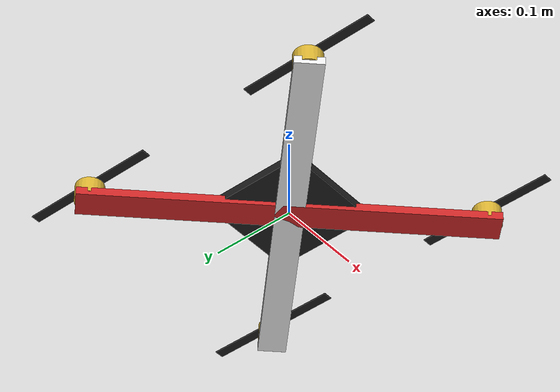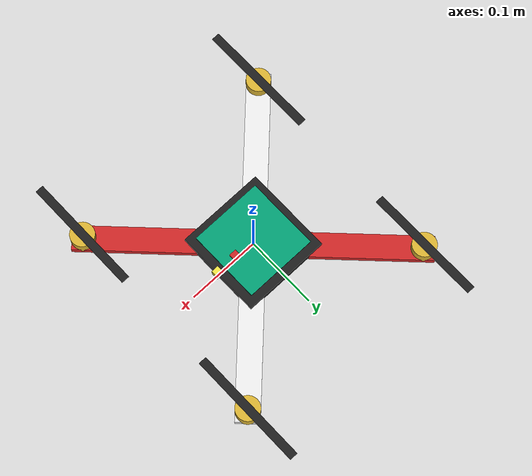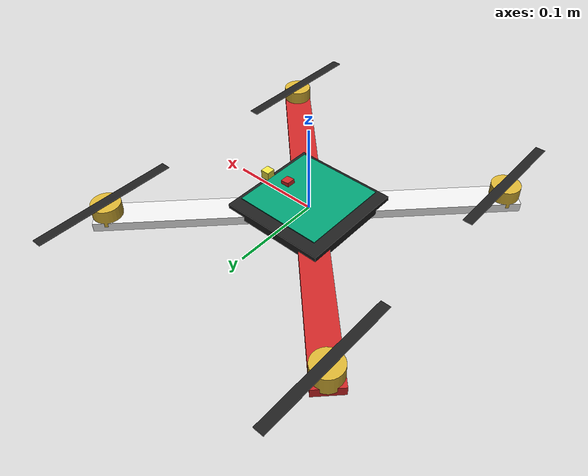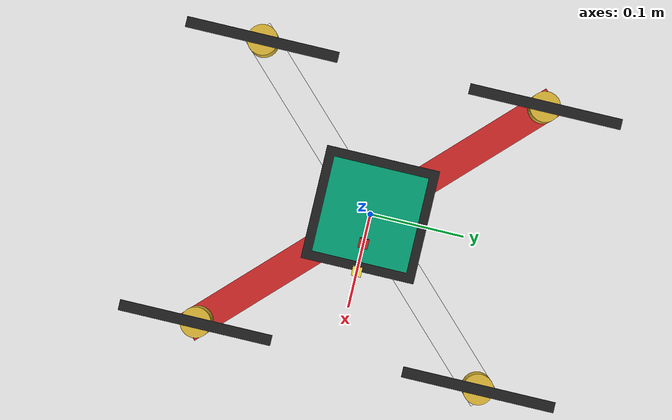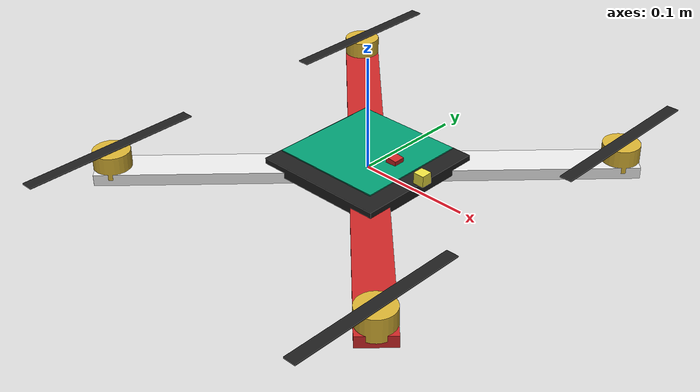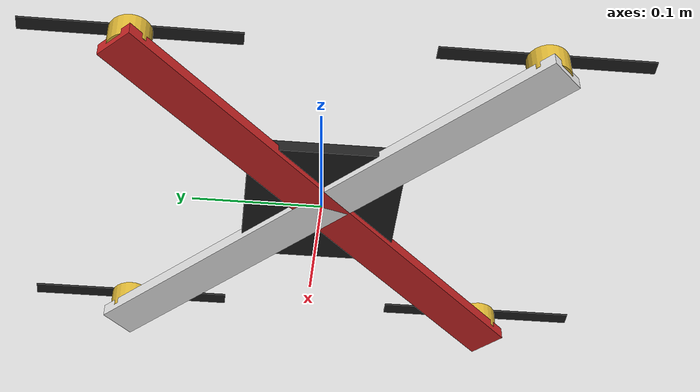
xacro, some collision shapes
<?xml version="1.0"?>
<robot xmlns:xacro="http://www.ros.org/wiki/xacro" name="Kwad">
	<xacro:property name="width" value="0.0315" />
	<xacro:property name="length" value="0.45" />
	<xacro:property name="height" value="0.01" />
	<xacro:property name="mass_fr" value="0.5" />
	<xacro:property name="mass_pr" value="0.0055" />
	<xacro:property name="pi_value" value="3.14159263" />
	<xacro:property name="radiusp" value="0.20" />
	<xacro:property name="prop_loc" value="0.15909" />
	<xacro:include filename="$(find urc_gazebo)/urdf/material.xacro" />
	<xacro:include filename="$(find urc_gazebo)/urdf/drone.gazebo" />
	<xacro:include filename="$(find urc_gazebo)/urdf/drone_inertials.xacro" />
	<!-- Define inertial macro -->
	<xacro:macro name="default_inertial" params="mass p ix_value iy_value iz_value" >
		<inertial>
			<origin xyz="0 0 0" rpy="0 0 ${p}" />
			<mass value="${mass}" />
			<inertia ixx="${ix_value}" ixy="0" ixz="0"
					 iyy="${iy_value}" iyz="0" izz="${iz_value}" />
		</inertial>
	</xacro:macro>
	<link name="base_link1">
		<visual>
			<origin xyz="0 0 0" rpy="0 0 ${pi_value/4}" />

			<geometry>
				<box size="${width} ${length} ${height}" />
			</geometry>

			<material name="red" />
		</visual>

		<collision>
			<origin xyz="0 0 0" rpy="0 0 ${pi_value/4}" />

			<geometry>
				<box size="${width} ${length} ${height}" />
			</geometry>
		</collision>

		<xacro:default_inertial mass="${mass_fr}" p="${pi_value/4}" ix_value="${0.04989/2}" iy_value="${0.04989/2}" iz_value="${0.24057/2}" />

	</link>
	<link name="base_link2">
		<visual>
			<origin xyz="0 0 0" rpy="0 0 ${-pi_value/4}" />

			<geometry>
				<box size="${width} ${length} ${height}" />
			</geometry>

			<material name="white" />
		</visual>

		<collision>
			<origin xyz="0 0 0" rpy="0 0 ${-pi_value/4}" />

			<geometry>
				<box size="${width} ${length} ${height}" />
			</geometry>
		</collision>

		<xacro:default_inertial mass="${mass_fr}" p="${-pi_value/4}" ix_value="${0.04989/2}" iy_value="${0.04989/2}" iz_value="${0.24057/2}" />
	</link>
	<link name="plate1">
		<visual>
			<origin xyz="0 0 0" rpy="0 0 0" />

			<geometry>
				<box size="${0.12} ${0.12} ${0.01}" />
			</geometry>

			<material name="black" />
		</visual>

		<collision>
			<origin xyz="0 0 0" rpy="0 0 0" />

			<geometry>
				<box size="${0.12} ${0.12} ${0.01}" />
			</geometry>
		</collision>

		<xacro:default_inertial mass="${0.01}" p="${0}" ix_value="${0}" iy_value="${0}" iz_value="${2.4-5}" />
	</link>

	<!-- Front-Facing Camera -->

	<link name="cam/front">
          <visual>
            <geometry>
              <box size="0.01 0.01 0.01"/>
            </geometry>
          </visual>

        <collision>
          <geometry>
            <box size="0.01 0.01 0.01"/>
          </geometry>
        </collision>

        <xacro:box_inertia m="0.1" w="0.1" d="0.1" h="0.1"/>
        </link>

        <joint name="front_cam_joint" type="fixed">
	  <axis xyz="1 0 0"/>
	  <!-- Edit these parameters to change camera orientation -->
	  <origin xyz="0.06 0 0.01" rpy = "0 0 0"/>
	  <parent link="plate1"/>
	  <child link="cam/front"/>
        </joint>

	<gazebo reference="cam/front">
          <sensor name="front_sensor" type="camera">
            <plugin name="front_sensor" filename="libgazebo_ros_camera.so">
              <ros>
                <namespace>/image</namespace>
                <remapping>~/image_raw:=front_img</remapping>
                <remapping>~/camera_info:=front_info</remapping>
              </ros>
              <initial_orientation_as_reference>false</initial_orientation_as_reference>
            </plugin>
            <always_on>true</always_on>
            <update_rate>100</update_rate>
            <visualize>true</visualize>
            <camera name="cam/front">
              <distortion>
                <k1>0.1</k1>
                <k2>0.2</k2>
                <k3>0.3</k3>
                <p1>0.4</p1>
                <p2>0.5</p2>
                <center>0.5 0.5</center>
              </distortion>
             </camera>
           </sensor>
        </gazebo>

        <!-- Bottom-Facing Camera -->

        <link name="cam/bottom">
          <visual>
            <geometry>
              <box size="0.01 0.01 0.01"/>
            </geometry>
          </visual>

        <collision>
          <geometry>
            <box size="0.01 0.01 0.01"/>
          </geometry>
        </collision>

        <xacro:box_inertia m="0.1" w="0.1" d="0.1" h="0.1"/>
        </link>

        <joint name="bottom_cam_joint" type="fixed">
	  <axis xyz="1 0 0"/>
	  <!-- Edit these parameters to change camera orientation -->
	  <origin xyz="0 0 0" rpy = "0 ${pi_value/2} 0"/>
	  <parent link="plate1"/>
	  <child link="cam/bottom"/>
        </joint>

	<gazebo reference="cam/bottom">
          <sensor name="bottom_sensor" type="camera">
            <plugin name="bottom_sensor" filename="libgazebo_ros_camera.so">
              <ros>
                <namespace>/image</namespace>
                <remapping>~/image_raw:=bottom_img</remapping>
                <remapping>~/camera_info:=bottom_info</remapping>
              </ros>
              <initial_orientation_as_reference>false</initial_orientation_as_reference>
            </plugin>
            <always_on>true</always_on>
            <update_rate>100</update_rate>
            <visualize>true</visualize>
            <camera name="cam/bottom">
              <distortion>
                <k1>0.1</k1>
                <k2>0.2</k2>
                <k3>0.3</k3>
                <p1>0.4</p1>
                <p2>0.5</p2>
                <center>0.5 0.5</center>
              </distortion>
             </camera>
           </sensor>
        </gazebo>

	<link name="plate2">
		<visual>
			<origin xyz="0 0 0" rpy="0 0 0" />

			<geometry>
				<box size="${0.05} ${0.03} ${0.005}" />
			</geometry>

			<material name="blue" />
		</visual>

		<collision>
			<origin xyz="0 0 0" rpy="0 0 0" />

			<geometry>
				<box size="${0.05} ${0.03} ${0.005}" />
			</geometry>
		</collision>

		<xacro:default_inertial mass="${0.001}" p="${0}" ix_value="${0}" iy_value="${0}" iz_value="${8.1666-7}" />
	</link>
	<link name="cyl1">
		<visual>
			<origin xyz="0 0 0" rpy="0 0 0" />

			<geometry>
				<cylinder radius="0.016" length="0.02" />
			</geometry>

			<material name="golden" />
		</visual>

		<collision>
			<origin xyz="0 0 0" rpy="0 0 0" />

			<geometry>
				<cylinder radius="0.016" length="0.02" />
			</geometry>
		</collision>

		<xacro:default_inertial mass="${0.01}" p="${0}" ix_value="${8.95e-6}" iy_value="${8.95e-6}" iz_value="${2.23e-4}" />
	</link>
	<link name="cyl2">
		<visual>
			<origin xyz="0 0 0" rpy="0 0 0" />

			<geometry>
				<cylinder radius="0.016" length="0.02" />
			</geometry>

			<material name="golden" />
		</visual>

		<collision>
			<origin xyz="0 0 0" rpy="0 0 0" />

			<geometry>
				<cylinder radius="0.016" length="0.02" />
			</geometry>
		</collision>

		<xacro:default_inertial mass="${0.01}" p="${0}" ix_value="${8.95e-6}" iy_value="${8.95e-6}" iz_value="${2.23e-4}" />
	</link>
	<link name="cyl3">
		<visual>
			<origin xyz="0 0 0" rpy="0 0 0" />

			<geometry>
				<cylinder radius="0.016" length="0.02" />
			</geometry>

			<material name="golden" />
		</visual>

		<collision>
			<origin xyz="0 0 0" rpy="0 0 0" />

			<geometry>
				<cylinder radius="0.016" length="0.02" />
			</geometry>
		</collision>

		<xacro:default_inertial mass="${0.01}" p="${0}" ix_value="${8.95e-6}" iy_value="${8.95e-6}" iz_value="${2.23e-4}" />
	</link>
	<link name="cyl4">
		<visual>
			<origin xyz="0 0 0" rpy="0 0 0" />

			<geometry>
				<cylinder radius="0.016" length="0.02" />
			</geometry>

			<material name="golden" />
		</visual>

		<collision>
			<origin xyz="0 0 0" rpy="0 0 0" />

			<geometry>
				<cylinder radius="0.016" length="0.02" />
			</geometry>
		</collision>

		<xacro:default_inertial mass="${0.01}" p="${0}" ix_value="${8.95e-6}" iy_value="${8.95e-6}" iz_value="${2.23e-4}" />
	</link>
	<link name="arduino">
		<visual>
			<origin xyz="0 0 0" rpy="0 0 0" />
			<geometry>
				<mesh filename="package://fly_bot/meshes/22V10.dae" scale="0.005 0.005 0.005" />
			</geometry>
		</visual>
		<collision>
			<origin xyz="0 0 0" rpy="0 0 0" />
			<geometry>
				<box size="0.1 0.1 0.001" />
			</geometry>
		</collision>
		<xacro:default_inertial mass="${0.05}" p="${0}" ix_value="${0}" iy_value="${0}" iz_value="${8.33333e-5}" />
	</link>
	<link name="camera_link">
		<visual>
			<origin xyz="0 0 0" rpy="0 0 0" />
			<geometry>
				<box size="0.01 0.01 0.01" />
			</geometry>

			<material name="red" />

		</visual>

		<collision>
			<origin xyz="0 0 0" rpy="0 0 0" />
			<geometry>
				<box size="0.01 0.01 0.01" />
			</geometry>
		</collision>

		<xacro:default_inertial mass="${1e-5}" p="${0}" ix_value="${1e-6}" iy_value="${1e-6}" iz_value="${1e-6}" />
	</link>
	<!-- Propellers of the quad: fr, fl, br, bl -->
	<link name="prop_front_right">
		<visual>
			<origin xyz="0 0 0" rpy="0 0 0" />

			<geometry>
				<box size="${0.03302/3} ${radiusp*0.8} ${0.001}" />
			</geometry>

			<material name="black" />
		</visual>

		<collision>
			<origin xyz="0 0 0" rpy="0 0 0" />

			<geometry>
				<box size="${0.03302/3} ${radiusp*0.8} ${0.001}" />
			</geometry>
		</collision>

		<xacro:default_inertial mass="${mass_pr}" p="${0}" ix_value="${0}" iy_value="${0}" iz_value="${4.42448e-5}" />
	</link>

	<link name="prop_front_left">
		<visual>
			<origin xyz="0 0 0" rpy="0 0 0" />

			<geometry>
				<box size="${0.03302/3} ${radiusp*0.8} ${0.001}" />
			</geometry>

			<material name="black"/>
		</visual>

		<collision>
			<origin xyz="0 0 0" rpy="0 0 0" />

			<geometry>
				<box size="${0.03302/3} ${radiusp*0.8} ${0.001}" />
			</geometry>
		</collision>

		<xacro:default_inertial mass="${mass_pr}" p="${0}"  ix_value="${0}" iy_value="${0}" iz_value="${4.42448e-5}" />

	</link>

	<link name="prop_back_right">
		<visual>
			<origin xyz="0 0 0" rpy="0 0 0" />

			<geometry>
				<box size="${0.03302/3} ${radiusp*0.8} ${0.001}" />
			</geometry>

			<material name="black"/>
		</visual>

		<collision>
			<origin xyz="0 0 0" rpy="0 0 0" />

			<geometry>
				<box size="${0.03302/3} ${radiusp*0.8} ${0.001}" />
			</geometry>
		</collision>

		<xacro:default_inertial mass="${mass_pr}" p="${0}"  ix_value="${0}" iy_value="${0}" iz_value="${4.42448e-5}" />

	</link>

	<link name="prop_back_left">
		<visual>
			<origin xyz="0 0 0" rpy="0 0 0" />

			<geometry>
				<box size="${0.03302/3} ${radiusp*0.8} ${0.001}" />
			</geometry>

			<material name="black"/>
		</visual>

		<collision>
			<origin xyz="0 0 0" rpy="0 0 0" />

			<geometry>
				<box size="${0.03302/3} ${radiusp*0.8} ${0.001}" />
			</geometry>
		</collision>

		<xacro:default_inertial mass="${mass_pr}" p="${0}"  ix_value="${0}" iy_value="${0}" iz_value="${4.42448e-5}" />

	</link>
	<!-- Define the joint between the arms of the frame -->
	<joint name="center" type="fixed">
		<parent link="base_link1" />
		<child link="base_link2" />

		<origin xyz="0 0 0" rpy="0 0 0"/>
		<axis xyz="0 0 1" />
	</joint>
	<!-- Define joint between prop fr and frame -->
	<joint name="joint_front_right_prop" type="continuous">
		<parent link="base_link2" />
		<child link="prop_front_right" />
		<origin xyz="${prop_loc - 0.01} ${prop_loc - 0.01} 0.021" rpy="0 0 0"/>
		<axis xyz="0 0 1" />
	</joint>
	<!-- Define joint between prop fl and frame -->
	<joint name="joint_front_left_prop" type="continuous">
		<parent link="base_link1" />
		<child link="prop_front_left" />
		<origin xyz="${-prop_loc + 0.01} ${prop_loc - 0.01} 0.021" rpy="0 0 0" />
		<axis xyz="0 0 1" />
	</joint>
<!-- Define joint between prop br and frame -->
	<joint name="joint_back_right_prop" type="continuous">
		<parent link="base_link1" />
		<child link="prop_back_right" />
		<origin xyz="${prop_loc - 0.01} ${-prop_loc + 0.01} 0.021" rpy="0 0 0" />
		<axis xyz="0 0 1" />
	</joint>
<!-- Define joint between prop br and frame -->
	<joint name="joint_back_left_prop" type="continuous">
		<parent link="base_link2" />
		<child link="prop_back_left" />
		<origin xyz="${-prop_loc + 0.01} ${-prop_loc + 0.01} 0.021" rpy="0 0 0" />
		<axis xyz="0 0 1" />
	</joint>
<!-- Define joint between plate1 and frame -->
	<joint name="joint_plate1_frame" type="fixed">
		<parent link="base_link2" />
		<child link="plate1" />
		<origin xyz="${0} ${0} 0.005" rpy="0 0 0" />
		<axis xyz="0 0 1" />
	</joint>
<!-- Define joint between plate1 and plate2 -->
	<joint name="joint_plate2_frame" type="fixed">
		<parent link="plate1" />
		<child link="plate2" />
		<origin xyz="${0} ${0} 0.007" rpy="0 0 0" />
		<axis xyz="0 0 1" />
	</joint>
<!-- Define joint between cyl1 and frame -->
	<joint name="joint_cyl1_frame" type="fixed">
		<parent link="base_link2" />
		<child link="cyl1" />
		<origin xyz="${prop_loc - 0.01} ${prop_loc - 0.01} 0.01" rpy="0 0 0" />
		<axis xyz="0 0 1" />
	</joint>
<!-- Define joint between cyl2 and frame -->
	<joint name="joint_cyl2_frame" type="fixed">
		<parent link="base_link2" />
		<child link="cyl2" />
		<origin xyz="${-prop_loc + 0.01} ${-prop_loc + 0.01} 0.01" rpy="0 0 0" />
		<axis xyz="0 0 1" />
	</joint>
<!-- Define joint between cyl3 and frame -->
	<joint name="joint_cyl3_frame" type="fixed">
		<parent link="base_link1" />
		<child link="cyl3" />
		<origin xyz="${-prop_loc + 0.01} ${prop_loc - 0.01} 0.01" rpy="0 0 0" />
		<axis xyz="0 0 1" />
	</joint>
<!-- Define joint between cyl4 and frame -->
	<joint name="joint_cyl4_frame" type="fixed">
		<parent link="base_link1" />
		<child link="cyl4" />
		<origin xyz="${prop_loc - 0.01} ${-prop_loc + 0.01} 0.01" rpy="0 0 0" />
		<axis xyz="0 0 1" />
	</joint>
<!-- Define joint between Arduino and frame -->
	<joint name="joint_arduino_frame" type="fixed">
		<parent link="plate2" />
		<child link="arduino" />
		<origin xyz="${0} ${0} 0.005" rpy="0 0 0" />
		<axis xyz="0 0 1" />
	</joint>
<!-- Define joint between Arduino and frame -->
	<joint name="joint_camera_frame" type="fixed">
		<parent link="plate2" />
		<child link="camera_link" />
		<origin xyz="${0.03} ${0} 0.005" rpy="0 0.1 0" />
		<axis xyz="0 0 1" />
	</joint>
<!-- Add transmission elements -->
	<transmission name="front_right_motor_joint" >
		<type>transmission_interface/SimpleTransmission</type>
		<joint name="joint_front_right_prop">
			<hardwareInterface>hardware_interface/VelocityJointInterface</hardwareInterface>
		</joint>
		<actuator name="BLDC_motor1">
			<hardwareInterface>hardware_interface/VelocityJointInterface</hardwareInterface>
			<mechanicalReduction>1</mechanicalReduction>
		</actuator>
	</transmission>

	<transmission name="front_left_motor_joint" >
		<type>transmission_interface/SimpleTransmission</type>
		<joint name="joint_front_left_prop">
			<hardwareInterface>hardware_interface/VelocityJointInterface</hardwareInterface>
		</joint>
		<actuator name="BLDC_motor2">
			<hardwareInterface>hardware_interface/VelocityJointInterface</hardwareInterface>
			<mechanicalReduction>1</mechanicalReduction>
		</actuator>
	</transmission>

	<transmission name="back_right_motor_joint" >
		<type>transmission_interface/SimpleTransmission</type>
		<joint name="joint_back_right_prop">
			<hardwareInterface>hardware_interface/VelocityJointInterface</hardwareInterface>
		</joint>
		<actuator name="BLDC_motor3">
			<hardwareInterface>hardware_interface/VelocityJointInterface</hardwareInterface>
			<mechanicalReduction>1</mechanicalReduction>
		</actuator>
	</transmission>

	<transmission name="back_left_motor_joint" >
		<type>transmission_interface/SimpleTransmission</type>
		<joint name="joint_back_left_prop">
			<hardwareInterface>hardware_interface/VelocityJointInterface</hardwareInterface>
		</joint>
		<actuator name="BLDC_motor4">
			<hardwareInterface>hardware_interface/VelocityJointInterface</hardwareInterface>
			<mechanicalReduction>1</mechanicalReduction>
		</actuator>
	</transmission>

<gazebo>
  <sensor type="camera" name="front_sensor">
          <!-- Set always_on only sensor, not on plugin -->
          <always_on>0</always_on>

          <!-- Set update_rate only sensor, not on plugin -->
          <update_rate>1</update_rate>

          <!-- Use camera, not camera_triggered -->
          <plugin name="front_sensor" filename="libgazebo_ros_camera.so">
            <ros>
              <namespace>/image</namespace>
              <argument>~/image_raw:=front_img</argument>
              <argument>~/camera_info:=front_info</argument>
            </ros>

            <!-- Set camera name. If empty, defaults to sensor name (i.e. "sensor_name") -->
            <camera_name>front_camera</camera_name>

            <!-- Set TF frame name. If empty, defaults to link name (i.e. "link_name") -->
            <frame_name>front_tf</frame_name>

            <hack_baseline>0.07</hack_baseline>

            <!-- No need to repeat distortion parameters or to set autoDistortion -->
          </plugin>
        </sensor>

  <sensor type="camera" name="bottom_sensor">
          <!-- Set always_on only sensor, not on plugin -->
          <always_on>0</always_on>

          <!-- Set update_rate only sensor, not on plugin -->
          <update_rate>1</update_rate>

          <!-- Use camera, not camera_triggered -->
          <plugin name="bottom_sensor" filename="libgazebo_ros_camera.so">
            <ros>
              <namespace>/image</namespace>
              <argument>~/image_raw:=bottom_img</argument>
              <argument>~/camera_info:=bottom_info</argument>
            </ros>

            <!-- Set camera name. If empty, defaults to sensor name (i.e. "sensor_name") -->
            <camera_name>bottom_camera</camera_name>

            <!-- Set TF frame name. If empty, defaults to link name (i.e. "link_name") -->
            <frame_name>bottom_tf</frame_name>

            <hack_baseline>0.07</hack_baseline>

            <!-- No need to repeat distortion parameters or to set autoDistortion -->
          </plugin>
        </sensor>
</gazebo>

</robot>
